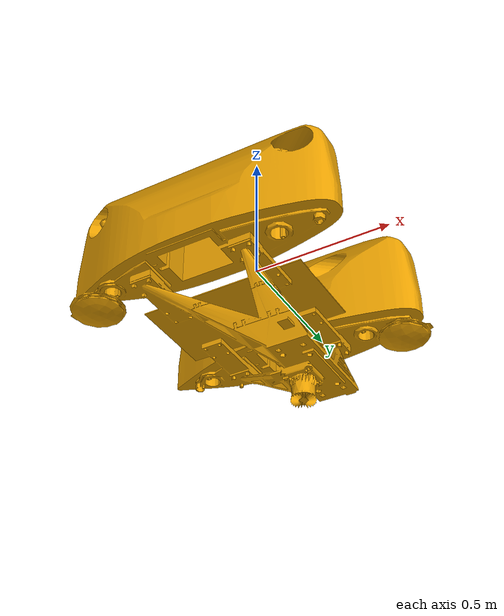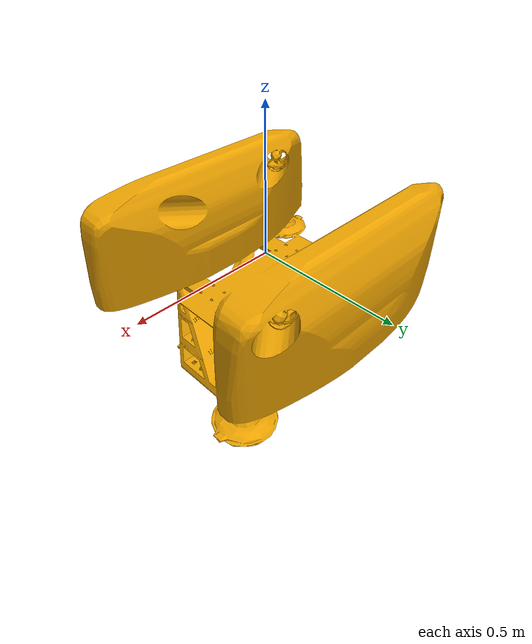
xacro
<?xml version="1.0"?>
<robot xmlns:xacro="http://www.ros.org/wiki/xacro" name="munin">

    <!-- Visual hull. Simplified from NJ26_MUN_HULL_ASM_MASTER.stl, in millimeters with x towards the bow and z up. -->
    <link name="base_link">
        <visual>
            <origin
                xyz="0.0 0.0 0.0"
                rpy="0.0 0.0 0.0"
            />
            <geometry>
                <mesh
                    filename="package://njord_simulator/meshes/munin/munin_simple.stl"
                    scale="0.001 0.001 0.001"
                />
            </geometry>
        </visual>
    </link>

    <!-- The simulator publishes world -> base_link_ned, so this is the root link. -->
    <link name="base_link_ned"/>
    <joint name="base_link_to_ned" type="fixed">
        <child link="base_link"/>
        <parent link="base_link_ned"/>
        <origin xyz="0 0 0" rpy="-3.1415926 0 0.0"/>
    </joint>

    <!-- Must match THRUSTERS in munin.py. The x axis of each link is the direction of positive thrust. -->
    <xacro:property name="thruster_angle" value="${40.0 * pi / 180.0}" />

    <xacro:macro name="thruster" params="thruster_name origin_xyz origin_rpy">
        <link name="${thruster_name}_link" />
        <joint name="${thruster_name}_joint" type="fixed">
            <parent link="base_link_ned" />
            <child link="${thruster_name}_link" />
            <origin xyz="${origin_xyz}" rpy="${origin_rpy}" />
        </joint>
    </xacro:macro>

    <xacro:thruster
        thruster_name="fore_port_thruster"
        origin_xyz="0.276 -0.330 0.124"
        origin_rpy="0 0 ${-thruster_angle}"
    />

    <xacro:thruster
        thruster_name="fore_starboard_thruster"
        origin_xyz="0.276 0.330 0.124"
        origin_rpy="0 0 ${thruster_angle}"
    />

    <xacro:thruster
        thruster_name="aft_port_thruster"
        origin_xyz="-0.379 -0.324 0.118"
        origin_rpy="0 0 ${-(pi - thruster_angle)}"
    />

    <xacro:thruster
        thruster_name="aft_starboard_thruster"
        origin_xyz="-0.379 0.324 0.118"
        origin_rpy="0 0 ${pi - thruster_angle}"
    />
</robot>
